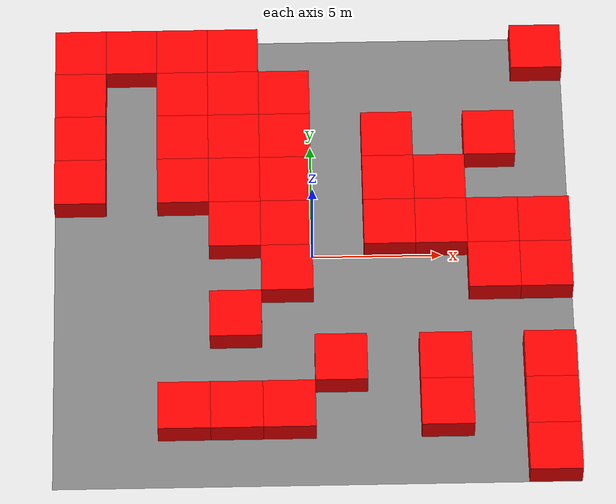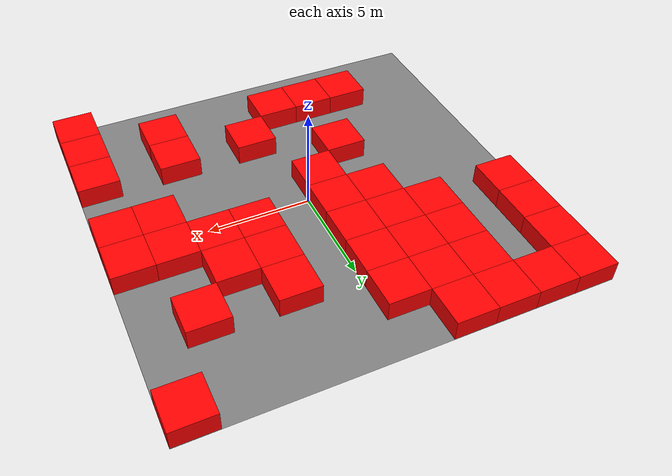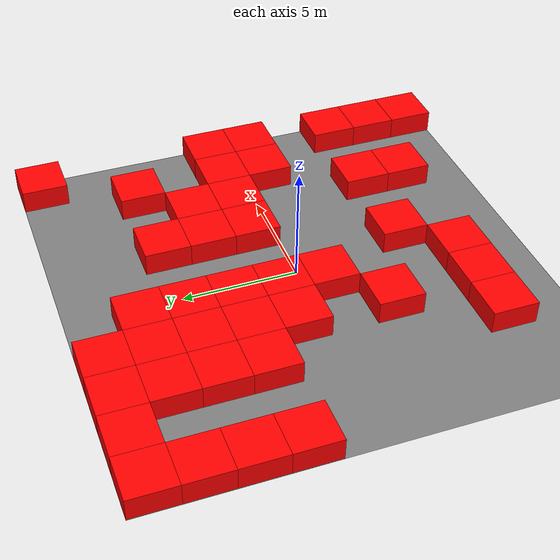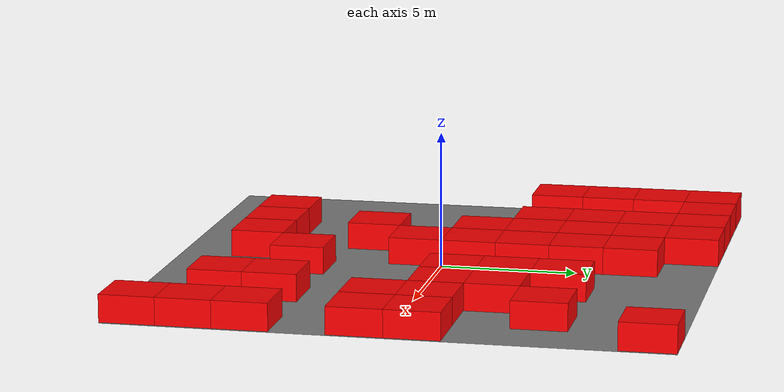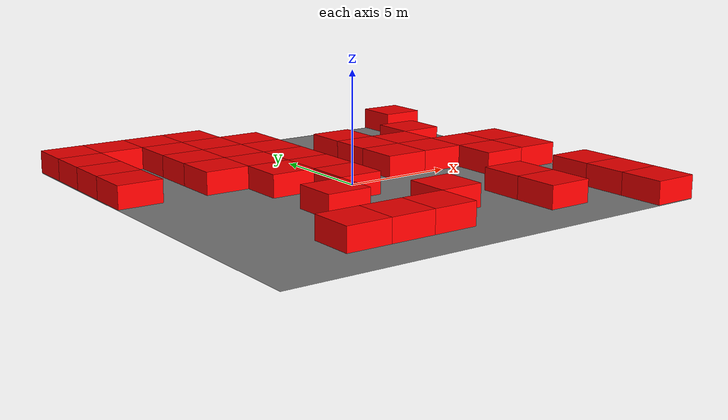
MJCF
<mujoco model="solver_10x10_wExact40_corrL4_seed7">
  <option timestep="0.01"/>

  <worldbody>
    <geom name="floor" type="plane" size="10.0 10.0 0.1" rgba="0.5 0.5 0.5 1"/>

    <body name="ob_0_0" pos="-9.0000 9.0000 0.500">  <geom type="box" size="1.0000 1.0000 0.500"         rgba="1 0 0 1" contype="1" conaffinity="1"/></body>
        <body name="ob_0_1" pos="-7.0000 9.0000 0.500">  <geom type="box" size="1.0000 1.0000 0.500"         rgba="1 0 0 1" contype="1" conaffinity="1"/></body>
        <body name="ob_0_2" pos="-5.0000 9.0000 0.500">  <geom type="box" size="1.0000 1.0000 0.500"         rgba="1 0 0 1" contype="1" conaffinity="1"/></body>
        <body name="ob_0_3" pos="-3.0000 9.0000 0.500">  <geom type="box" size="1.0000 1.0000 0.500"         rgba="1 0 0 1" contype="1" conaffinity="1"/></body>
        <body name="ob_0_9" pos="9.0000 9.0000 0.500">  <geom type="box" size="1.0000 1.0000 0.500"         rgba="1 0 0 1" contype="1" conaffinity="1"/></body>
        <body name="ob_1_0" pos="-9.0000 7.0000 0.500">  <geom type="box" size="1.0000 1.0000 0.500"         rgba="1 0 0 1" contype="1" conaffinity="1"/></body>
        <body name="ob_1_2" pos="-5.0000 7.0000 0.500">  <geom type="box" size="1.0000 1.0000 0.500"         rgba="1 0 0 1" contype="1" conaffinity="1"/></body>
        <body name="ob_1_3" pos="-3.0000 7.0000 0.500">  <geom type="box" size="1.0000 1.0000 0.500"         rgba="1 0 0 1" contype="1" conaffinity="1"/></body>
        <body name="ob_1_4" pos="-1.0000 7.0000 0.500">  <geom type="box" size="1.0000 1.0000 0.500"         rgba="1 0 0 1" contype="1" conaffinity="1"/></body>
        <body name="ob_2_0" pos="-9.0000 5.0000 0.500">  <geom type="box" size="1.0000 1.0000 0.500"         rgba="1 0 0 1" contype="1" conaffinity="1"/></body>
        <body name="ob_2_2" pos="-5.0000 5.0000 0.500">  <geom type="box" size="1.0000 1.0000 0.500"         rgba="1 0 0 1" contype="1" conaffinity="1"/></body>
        <body name="ob_2_3" pos="-3.0000 5.0000 0.500">  <geom type="box" size="1.0000 1.0000 0.500"         rgba="1 0 0 1" contype="1" conaffinity="1"/></body>
        <body name="ob_2_4" pos="-1.0000 5.0000 0.500">  <geom type="box" size="1.0000 1.0000 0.500"         rgba="1 0 0 1" contype="1" conaffinity="1"/></body>
        <body name="ob_2_6" pos="3.0000 5.0000 0.500">  <geom type="box" size="1.0000 1.0000 0.500"         rgba="1 0 0 1" contype="1" conaffinity="1"/></body>
        <body name="ob_2_8" pos="7.0000 5.0000 0.500">  <geom type="box" size="1.0000 1.0000 0.500"         rgba="1 0 0 1" contype="1" conaffinity="1"/></body>
        <body name="ob_3_0" pos="-9.0000 3.0000 0.500">  <geom type="box" size="1.0000 1.0000 0.500"         rgba="1 0 0 1" contype="1" conaffinity="1"/></body>
        <body name="ob_3_2" pos="-5.0000 3.0000 0.500">  <geom type="box" size="1.0000 1.0000 0.500"         rgba="1 0 0 1" contype="1" conaffinity="1"/></body>
        <body name="ob_3_3" pos="-3.0000 3.0000 0.500">  <geom type="box" size="1.0000 1.0000 0.500"         rgba="1 0 0 1" contype="1" conaffinity="1"/></body>
        <body name="ob_3_4" pos="-1.0000 3.0000 0.500">  <geom type="box" size="1.0000 1.0000 0.500"         rgba="1 0 0 1" contype="1" conaffinity="1"/></body>
        <body name="ob_3_6" pos="3.0000 3.0000 0.500">  <geom type="box" size="1.0000 1.0000 0.500"         rgba="1 0 0 1" contype="1" conaffinity="1"/></body>
        <body name="ob_3_7" pos="5.0000 3.0000 0.500">  <geom type="box" size="1.0000 1.0000 0.500"         rgba="1 0 0 1" contype="1" conaffinity="1"/></body>
        <body name="ob_4_3" pos="-3.0000 1.0000 0.500">  <geom type="box" size="1.0000 1.0000 0.500"         rgba="1 0 0 1" contype="1" conaffinity="1"/></body>
        <body name="ob_4_4" pos="-1.0000 1.0000 0.500">  <geom type="box" size="1.0000 1.0000 0.500"         rgba="1 0 0 1" contype="1" conaffinity="1"/></body>
        <body name="ob_4_6" pos="3.0000 1.0000 0.500">  <geom type="box" size="1.0000 1.0000 0.500"         rgba="1 0 0 1" contype="1" conaffinity="1"/></body>
        <body name="ob_4_7" pos="5.0000 1.0000 0.500">  <geom type="box" size="1.0000 1.0000 0.500"         rgba="1 0 0 1" contype="1" conaffinity="1"/></body>
        <body name="ob_4_8" pos="7.0000 1.0000 0.500">  <geom type="box" size="1.0000 1.0000 0.500"         rgba="1 0 0 1" contype="1" conaffinity="1"/></body>
        <body name="ob_4_9" pos="9.0000 1.0000 0.500">  <geom type="box" size="1.0000 1.0000 0.500"         rgba="1 0 0 1" contype="1" conaffinity="1"/></body>
        <body name="ob_5_4" pos="-1.0000 -1.0000 0.500">  <geom type="box" size="1.0000 1.0000 0.500"         rgba="1 0 0 1" contype="1" conaffinity="1"/></body>
        <body name="ob_5_8" pos="7.0000 -1.0000 0.500">  <geom type="box" size="1.0000 1.0000 0.500"         rgba="1 0 0 1" contype="1" conaffinity="1"/></body>
        <body name="ob_5_9" pos="9.0000 -1.0000 0.500">  <geom type="box" size="1.0000 1.0000 0.500"         rgba="1 0 0 1" contype="1" conaffinity="1"/></body>
        <body name="ob_6_3" pos="-3.0000 -3.0000 0.500">  <geom type="box" size="1.0000 1.0000 0.500"         rgba="1 0 0 1" contype="1" conaffinity="1"/></body>
        <body name="ob_7_5" pos="1.0000 -5.0000 0.500">  <geom type="box" size="1.0000 1.0000 0.500"         rgba="1 0 0 1" contype="1" conaffinity="1"/></body>
        <body name="ob_7_7" pos="5.0000 -5.0000 0.500">  <geom type="box" size="1.0000 1.0000 0.500"         rgba="1 0 0 1" contype="1" conaffinity="1"/></body>
        <body name="ob_7_9" pos="9.0000 -5.0000 0.500">  <geom type="box" size="1.0000 1.0000 0.500"         rgba="1 0 0 1" contype="1" conaffinity="1"/></body>
        <body name="ob_8_2" pos="-5.0000 -7.0000 0.500">  <geom type="box" size="1.0000 1.0000 0.500"         rgba="1 0 0 1" contype="1" conaffinity="1"/></body>
        <body name="ob_8_3" pos="-3.0000 -7.0000 0.500">  <geom type="box" size="1.0000 1.0000 0.500"         rgba="1 0 0 1" contype="1" conaffinity="1"/></body>
        <body name="ob_8_4" pos="-1.0000 -7.0000 0.500">  <geom type="box" size="1.0000 1.0000 0.500"         rgba="1 0 0 1" contype="1" conaffinity="1"/></body>
        <body name="ob_8_7" pos="5.0000 -7.0000 0.500">  <geom type="box" size="1.0000 1.0000 0.500"         rgba="1 0 0 1" contype="1" conaffinity="1"/></body>
        <body name="ob_8_9" pos="9.0000 -7.0000 0.500">  <geom type="box" size="1.0000 1.0000 0.500"         rgba="1 0 0 1" contype="1" conaffinity="1"/></body>
        <body name="ob_9_9" pos="9.0000 -9.0000 0.500">  <geom type="box" size="1.0000 1.0000 0.500"         rgba="1 0 0 1" contype="1" conaffinity="1"/></body>

  </worldbody>

</mujoco>
